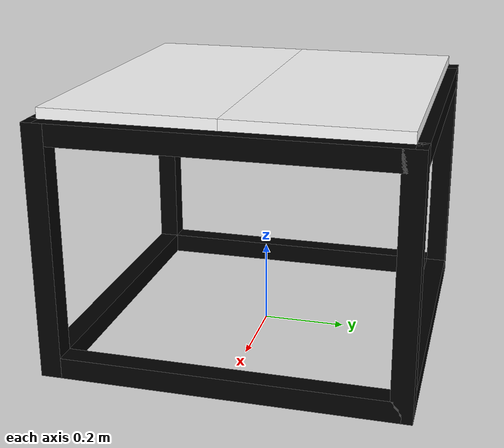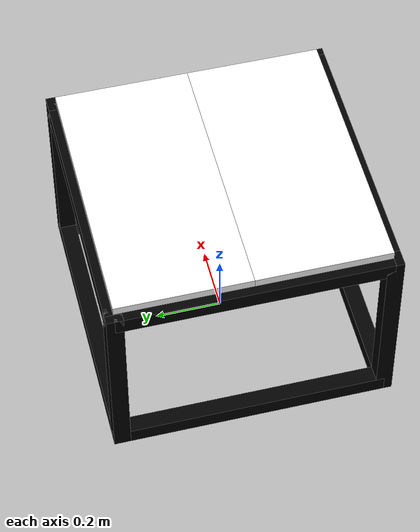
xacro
<?xml version="1.0"?>
<robot name="dron" xmlns:xacro="http://ros.org/wiki/xacro">

	<material name="black">
    <color rgba="0 0 0 1"/>
    </material>
    <material name="white">
    <color rgba="1 1 1 1"/>
    </material>

  <link name="base_link">
    <visual>
      <geometry>
        <box size="0.8 0.05 0.05"/>
      </geometry>
      <origin xyz="0 0.4 0.025"/>
      <material name="black"/>
    </visual>

    <visual>
      <geometry>
        <box size="0.8 0.05 0.05"/>
      </geometry>
      <origin xyz="0 -0.4 0.025"/>
      <material name="black"/>
    </visual>

    <visual>
      <geometry>
        <box size="0.8 0.05 0.05"/>
      </geometry>
      <origin xyz="0 0.4 0.575"/>
      <material name="black"/>
    </visual>

    <visual>
      <geometry>
        <box size="0.8 0.05 0.05"/>
      </geometry>
      <origin xyz="0 0.4 0.575"/>
      <material name="black"/>
    </visual>
    <visual>
      <geometry>
        <box size="0.8 0.05 0.05"/>
      </geometry>
      <origin xyz="0 -0.4 0.575"/>
      <material name="black"/>
    </visual>
    <visual>
      <geometry>
        <box size="0.05 0.05 0.6"/>
      </geometry>
      <origin xyz="0.4 0.4 0.3"/>
      <material name="black"/>
    </visual>
    <visual>
      <geometry>
        <box size="0.05 0.05 0.6"/>
      </geometry>
      <origin xyz="-0.4 0.4 0.3"/>
      <material name="black"/>
    </visual>

    <visual>
      <geometry>
        <box size="0.05 0.05 0.6"/>
      </geometry>
      <origin xyz="0.4 -0.4 0.3"/>
      <material name="black"/>
    </visual>

    <visual>
      <geometry>
        <box size="0.05 0.05 0.6"/>
      </geometry>
      <origin xyz="-0.4 -0.4 0.3"/>
      <material name="black"/>
    </visual>

    <visual>
      <geometry>
        <box size="0.05 0.8 0.05"/>
      </geometry>
      <origin xyz="-0.4 0 0.025"/>
      <material name="black"/>
    </visual>
    <visual>
      <geometry>
        <box size="0.05 0.8 0.05"/>
      </geometry>
      <origin xyz="0.4 0 0.025"/>
      <material name="black"/>
    </visual>
    <visual>
      <geometry>
        <box size="0.05 0.8 0.05"/>
      </geometry>
      <origin xyz="-0.4 0 0.575"/>
      <material name="black"/>
    </visual>
    <visual>
      <geometry>
        <box size="0.05 0.8 0.05"/>
      </geometry>
      <origin xyz="0.4 0 0.575"/>
      <material name="black"/>
    </visual>
  </link>

  <link name="right_leg">
    <visual>
      <geometry>
        <box size="0.8 0.4 0.025"/>
      </geometry>
      <material name="white"/>
    </visual>
  </link>
  <link name="left_leg">
    <visual>
      <geometry>
        <box size="0.8 0.4 0.025"/>
      </geometry>
      <material name="white"/>
    </visual>
  </link>

  <joint name="base_to_right_leg" type="fixed">
    <parent link="base_link"/>
    <child link="right_leg"/>
    <origin xyz="0 0.2 0.615"/>
  </joint>

  <joint name="base_to_left_leg" type="fixed">
    <parent link="base_link"/>
    <child link="left_leg"/>
    <origin xyz="0 -0.2 0.615"/>
  </joint>

</robot>
